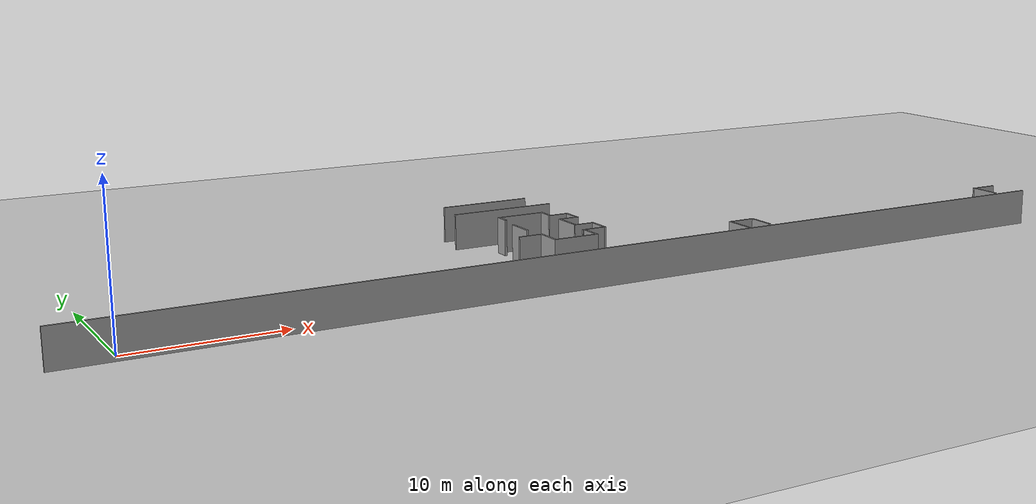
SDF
<sdf version="1.6">
 <world name="default">
  <model name="ground_plane">
   <static>1</static>
   <link name="link">
    <collision name="collision">
     <geometry><plane><normal>0 0 1</normal><size>100 100</size></plane></geometry>
     <surface><friction><ode><mu>100</mu><mu2>50</mu2></ode></friction></surface>
    </collision>
    <visual name="visual">
     <cast_shadows>0</cast_shadows>
     <geometry><plane><normal>0 0 1</normal><size>100 100</size></plane></geometry>
     <material>
      <script><uri>file://media/materials/scripts/gazebo.material</uri><name>Gazebo/Grey</name></script>
     </material>
    </visual>
   </link>
  </model>
  <model name="chengdu_office_0">
   <link name="Wall_0">
    <pose>-2e-06 -34.675 0 0 -0 0</pose>
    <visual name="Wall_0_Visual">
     <pose>0 0 1.25 0 -0 0</pose>
     <geometry><box><size>71 0.15 2.5</size></box></geometry>
     <material>
      <script><uri>file://media/materials/scripts/gazebo.material</uri><name>Gazebo/Grey</name></script>
      <ambient>1 1 1 1</ambient>
      <diffuse>0.7 0.7 0.7 1</diffuse>
      <specular>0.01 0.01 0.01 1</specular>
      <emissive>0 0 0 1</emissive>
     </material>
    </visual>
    <collision name="Wall_0_Collision">
     <pose>0 0 1.25 0 -0 0</pose>
     <geometry><box><size>71 0.15 2.5</size></box></geometry>
     <surface>
      <friction>
       <ode><mu>1</mu><mu2>1</mu2><fdir1>0 0 0</fdir1><slip1>0</slip1><slip2>0</slip2></ode>
       <torsional>
        <coefficient>1</coefficient>
        <patch_radius>0</patch_radius>
        <surface_radius>0</surface_radius>
        <use_patch_radius>1</use_patch_radius>
        <ode><slip>0</slip></ode>
       </torsional>
      </friction>
      <bounce><restitution_coefficient>0</restitution_coefficient><threshold>1e+06</threshold></bounce>
      <contact>
       <collide_without_contact>0</collide_without_contact>
       <collide_without_contact_bitmask>1</collide_without_contact_bitmask>
       <collide_bitmask>1</collide_bitmask>
       <ode>
        <soft_cfm>0</soft_cfm>
        <soft_erp>0.2</soft_erp>
        <kp>1e+13</kp>
        <kd>1</kd>
        <max_vel>0.01</max_vel>
        <min_depth>0</min_depth>
       </ode>
       <bullet>
        <split_impulse>1</split_impulse>
        <split_impulse_penetration_threshold>-0.01</split_impulse_penetration_threshold>
        <soft_cfm>0</soft_cfm>
        <soft_erp>0.2</soft_erp>
        <kp>1e+13</kp>
        <kd>1</kd>
       </bullet>
      </contact>
     </surface>
    </collision>
   </link>
   <link name="Wall_120">
    <pose>10.2646 -33.3892 0 0 -0 1.5708</pose>
    <visual name="Wall_120_Visual">
     <pose>0 0 1.25 0 -0 0</pose>
     <geometry><box><size>2.25 0.15 2.5</size></box></geometry>
     <material>
      <script><uri>file://media/materials/scripts/gazebo.material</uri><name>Gazebo/Grey</name></script>
      <ambient>1 1 1 1</ambient>
      <diffuse>0.7 0.7 0.7 1</diffuse>
      <specular>0.01 0.01 0.01 1</specular>
      <emissive>0 0 0 1</emissive>
     </material>
    </visual>
    <collision name="Wall_120_Collision">
     <pose>0 0 1.25 0 -0 0</pose>
     <geometry><box><size>2.25 0.15 2.5</size></box></geometry>
     <surface>
      <friction>
       <ode><mu>1</mu><mu2>1</mu2><fdir1>0 0 0</fdir1><slip1>0</slip1><slip2>0</slip2></ode>
       <torsional>
        <coefficient>1</coefficient>
        <patch_radius>0</patch_radius>
        <surface_radius>0</surface_radius>
        <use_patch_radius>1</use_patch_radius>
        <ode><slip>0</slip></ode>
       </torsional>
      </friction>
      <bounce><restitution_coefficient>0</restitution_coefficient><threshold>1e+06</threshold></bounce>
      <contact>
       <collide_without_contact>0</collide_without_contact>
       <collide_without_contact_bitmask>1</collide_without_contact_bitmask>
       <collide_bitmask>1</collide_bitmask>
       <ode>
        <soft_cfm>0</soft_cfm>
        <soft_erp>0.2</soft_erp>
        <kp>1e+13</kp>
        <kd>1</kd>
        <max_vel>0.01</max_vel>
        <min_depth>0</min_depth>
       </ode>
       <bullet>
        <split_impulse>1</split_impulse>
        <split_impulse_penetration_threshold>-0.01</split_impulse_penetration_threshold>
        <soft_cfm>0</soft_cfm>
        <soft_erp>0.2</soft_erp>
        <kp>1e+13</kp>
        <kd>1</kd>
       </bullet>
      </contact>
     </surface>
    </collision>
   </link>
   <link name="Wall_121">
    <pose>11.1896 -32.3392 0 0 -0 0</pose>
    <visual name="Wall_121_Visual">
     <pose>0 0 1.25 0 -0 0</pose>
     <geometry><box><size>2 0.15 2.5</size></box></geometry>
     <material>
      <script><uri>file://media/materials/scripts/gazebo.material</uri><name>Gazebo/Grey</name></script>
      <ambient>1 1 1 1</ambient>
      <diffuse>0.7 0.7 0.7 1</diffuse>
      <specular>0.01 0.01 0.01 1</specular>
      <emissive>0 0 0 1</emissive>
     </material>
    </visual>
    <collision name="Wall_121_Collision">
     <pose>0 0 1.25 0 -0 0</pose>
     <geometry><box><size>2 0.15 2.5</size></box></geometry>
     <surface>
      <friction>
       <ode><mu>1</mu><mu2>1</mu2><fdir1>0 0 0</fdir1><slip1>0</slip1><slip2>0</slip2></ode>
       <torsional>
        <coefficient>1</coefficient>
        <patch_radius>0</patch_radius>
        <surface_radius>0</surface_radius>
        <use_patch_radius>1</use_patch_radius>
        <ode><slip>0</slip></ode>
       </torsional>
      </friction>
      <bounce><restitution_coefficient>0</restitution_coefficient><threshold>1e+06</threshold></bounce>
      <contact>
       <collide_without_contact>0</collide_without_contact>
       <collide_without_contact_bitmask>1</collide_without_contact_bitmask>
       <collide_bitmask>1</collide_bitmask>
       <ode>
        <soft_cfm>0</soft_cfm>
        <soft_erp>0.2</soft_erp>
        <kp>1e+13</kp>
        <kd>1</kd>
        <max_vel>0.01</max_vel>
        <min_depth>0</min_depth>
       </ode>
       <bullet>
        <split_impulse>1</split_impulse>
        <split_impulse_penetration_threshold>-0.01</split_impulse_penetration_threshold>
        <soft_cfm>0</soft_cfm>
        <soft_erp>0.2</soft_erp>
        <kp>1e+13</kp>
        <kd>1</kd>
       </bullet>
      </contact>
     </surface>
    </collision>
   </link>
   <link name="Wall_122">
    <pose>12.1146 -33.2642 0 0 0 -1.5708</pose>
    <visual name="Wall_122_Visual">
     <pose>0 0 1.25 0 -0 0</pose>
     <geometry><box><size>2 0.15 2.5</size></box></geometry>
     <material>
      <script><uri>file://media/materials/scripts/gazebo.material</uri><name>Gazebo/Grey</name></script>
      <ambient>1 1 1 1</ambient>
      <diffuse>0.7 0.7 0.7 1</diffuse>
      <specular>0.01 0.01 0.01 1</specular>
      <emissive>0 0 0 1</emissive>
     </material>
    </visual>
    <collision name="Wall_122_Collision">
     <pose>0 0 1.25 0 -0 0</pose>
     <geometry><box><size>2 0.15 2.5</size></box></geometry>
     <surface>
      <friction>
       <ode><mu>1</mu><mu2>1</mu2><fdir1>0 0 0</fdir1><slip1>0</slip1><slip2>0</slip2></ode>
       <torsional>
        <coefficient>1</coefficient>
        <patch_radius>0</patch_radius>
        <surface_radius>0</surface_radius>
        <use_patch_radius>1</use_patch_radius>
        <ode><slip>0</slip></ode>
       </torsional>
      </friction>
      <bounce><restitution_coefficient>0</restitution_coefficient><threshold>1e+06</threshold></bounce>
      <contact>
       <collide_without_contact>0</collide_without_contact>
       <collide_without_contact_bitmask>1</collide_without_contact_bitmask>
       <collide_bitmask>1</collide_bitmask>
       <ode>
        <soft_cfm>0</soft_cfm>
        <soft_erp>0.2</soft_erp>
        <kp>1e+13</kp>
        <kd>1</kd>
        <max_vel>0.01</max_vel>
        <min_depth>0</min_depth>
       </ode>
       <bullet>
        <split_impulse>1</split_impulse>
        <split_impulse_penetration_threshold>-0.01</split_impulse_penetration_threshold>
        <soft_cfm>0</soft_cfm>
        <soft_erp>0.2</soft_erp>
        <kp>1e+13</kp>
        <kd>1</kd>
       </bullet>
      </contact>
     </surface>
    </collision>
   </link>
   <link name="Wall_124">
    <pose>33.0646 -33.2292 0 0 -0 1.5708</pose>
    <visual name="Wall_124_Visual">
     <pose>0 0 1.25 0 -0 0</pose>
     <geometry><box><size>2.25 0.15 2.5</size></box></geometry>
     <material>
      <script><uri>file://media/materials/scripts/gazebo.material</uri><name>Gazebo/Grey</name></script>
      <ambient>1 1 1 1</ambient>
      <diffuse>0.7 0.7 0.7 1</diffuse>
      <specular>0.01 0.01 0.01 1</specular>
      <emissive>0 0 0 1</emissive>
     </material>
    </visual>
    <collision name="Wall_124_Collision">
     <pose>0 0 1.25 0 -0 0</pose>
     <geometry><box><size>2.25 0.15 2.5</size></box></geometry>
     <surface>
      <friction>
       <ode><mu>1</mu><mu2>1</mu2><fdir1>0 0 0</fdir1><slip1>0</slip1><slip2>0</slip2></ode>
       <torsional>
        <coefficient>1</coefficient>
        <patch_radius>0</patch_radius>
        <surface_radius>0</surface_radius>
        <use_patch_radius>1</use_patch_radius>
        <ode><slip>0</slip></ode>
       </torsional>
      </friction>
      <bounce><restitution_coefficient>0</restitution_coefficient><threshold>1e+06</threshold></bounce>
      <contact>
       <collide_without_contact>0</collide_without_contact>
       <collide_without_contact_bitmask>1</collide_without_contact_bitmask>
       <collide_bitmask>1</collide_bitmask>
       <ode>
        <soft_cfm>0</soft_cfm>
        <soft_erp>0.2</soft_erp>
        <kp>1e+13</kp>
        <kd>1</kd>
        <max_vel>0.01</max_vel>
        <min_depth>0</min_depth>
       </ode>
       <bullet>
        <split_impulse>1</split_impulse>
        <split_impulse_penetration_threshold>-0.01</split_impulse_penetration_threshold>
        <soft_cfm>0</soft_cfm>
        <soft_erp>0.2</soft_erp>
        <kp>1e+13</kp>
        <kd>1</kd>
       </bullet>
      </contact>
     </surface>
    </collision>
   </link>
   <link name="Wall_125">
    <pose>33.9896 -32.1792 0 0 -0 0</pose>
    <visual name="Wall_125_Visual">
     <pose>0 0 1.25 0 -0 0</pose>
     <geometry><box><size>2 0.15 2.5</size></box></geometry>
     <material>
      <script><uri>file://media/materials/scripts/gazebo.material</uri><name>Gazebo/Grey</name></script>
      <ambient>1 1 1 1</ambient>
      <diffuse>0.7 0.7 0.7 1</diffuse>
      <specular>0.01 0.01 0.01 1</specular>
      <emissive>0 0 0 1</emissive>
     </material>
    </visual>
    <collision name="Wall_125_Collision">
     <pose>0 0 1.25 0 -0 0</pose>
     <geometry><box><size>2 0.15 2.5</size></box></geometry>
     <surface>
      <friction>
       <ode><mu>1</mu><mu2>1</mu2><fdir1>0 0 0</fdir1><slip1>0</slip1><slip2>0</slip2></ode>
       <torsional>
        <coefficient>1</coefficient>
        <patch_radius>0</patch_radius>
        <surface_radius>0</surface_radius>
        <use_patch_radius>1</use_patch_radius>
        <ode><slip>0</slip></ode>
       </torsional>
      </friction>
      <bounce><restitution_coefficient>0</restitution_coefficient><threshold>1e+06</threshold></bounce>
      <contact>
       <collide_without_contact>0</collide_without_contact>
       <collide_without_contact_bitmask>1</collide_without_contact_bitmask>
       <collide_bitmask>1</collide_bitmask>
       <ode>
        <soft_cfm>0</soft_cfm>
        <soft_erp>0.2</soft_erp>
        <kp>1e+13</kp>
        <kd>1</kd>
        <max_vel>0.01</max_vel>
        <min_depth>0</min_depth>
       </ode>
       <bullet>
        <split_impulse>1</split_impulse>
        <split_impulse_penetration_threshold>-0.01</split_impulse_penetration_threshold>
        <soft_cfm>0</soft_cfm>
        <soft_erp>0.2</soft_erp>
        <kp>1e+13</kp>
        <kd>1</kd>
       </bullet>
      </contact>
     </surface>
    </collision>
   </link>
   <link name="Wall_129">
    <pose>-1.17216 -18.065 0 0 -0 3.14159</pose>
    <visual name="Wall_129_Visual">
     <pose>0 0 1.25 0 -0 0</pose>
     <geometry><box><size>6.5 0.15 2.5</size></box></geometry>
     <material>
      <script><uri>file://media/materials/scripts/gazebo.material</uri><name>Gazebo/Grey</name></script>
      <ambient>1 1 1 1</ambient>
      <diffuse>0.7 0.7 0.7 1</diffuse>
      <specular>0.01 0.01 0.01 1</specular>
      <emissive>0 0 0 1</emissive>
     </material>
    </visual>
    <collision name="Wall_129_Collision">
     <pose>0 0 1.25 0 -0 0</pose>
     <geometry><box><size>6.5 0.15 2.5</size></box></geometry>
     <surface>
      <friction>
       <ode><mu>1</mu><mu2>1</mu2><fdir1>0 0 0</fdir1><slip1>0</slip1><slip2>0</slip2></ode>
       <torsional>
        <coefficient>1</coefficient>
        <patch_radius>0</patch_radius>
        <surface_radius>0</surface_radius>
        <use_patch_radius>1</use_patch_radius>
        <ode><slip>0</slip></ode>
       </torsional>
      </friction>
      <bounce><restitution_coefficient>0</restitution_coefficient><threshold>1e+06</threshold></bounce>
      <contact>
       <collide_without_contact>0</collide_without_contact>
       <collide_without_contact_bitmask>1</collide_without_contact_bitmask>
       <collide_bitmask>1</collide_bitmask>
       <ode>
        <soft_cfm>0</soft_cfm>
        <soft_erp>0.2</soft_erp>
        <kp>1e+13</kp>
        <kd>1</kd>
        <max_vel>0.01</max_vel>
        <min_depth>0</min_depth>
       </ode>
       <bullet>
        <split_impulse>1</split_impulse>
        <split_impulse_penetration_threshold>-0.01</split_impulse_penetration_threshold>
        <soft_cfm>0</soft_cfm>
        <soft_erp>0.2</soft_erp>
        <kp>1e+13</kp>
        <kd>1</kd>
       </bullet>
      </contact>
     </surface>
    </collision>
   </link>
   <link name="Wall_134">
    <pose>-1.07216 -20.665 0 0 -0 0</pose>
    <visual name="Wall_134_Visual">
     <pose>0 0 1.25 0 -0 0</pose>
     <geometry><box><size>7.5 0.15 2.5</size></box></geometry>
     <material>
      <script><uri>file://media/materials/scripts/gazebo.material</uri><name>Gazebo/Grey</name></script>
      <ambient>1 1 1 1</ambient>
      <diffuse>0.7 0.7 0.7 1</diffuse>
      <specular>0.01 0.01 0.01 1</specular>
      <emissive>0 0 0 1</emissive>
     </material>
    </visual>
    <collision name="Wall_134_Collision">
     <pose>0 0 1.25 0 -0 0</pose>
     <geometry><box><size>7.5 0.15 2.5</size></box></geometry>
     <surface>
      <friction>
       <ode><mu>1</mu><mu2>1</mu2><fdir1>0 0 0</fdir1><slip1>0</slip1><slip2>0</slip2></ode>
       <torsional>
        <coefficient>1</coefficient>
        <patch_radius>0</patch_radius>
        <surface_radius>0</surface_radius>
        <use_patch_radius>1</use_patch_radius>
        <ode><slip>0</slip></ode>
       </torsional>
      </friction>
      <bounce><restitution_coefficient>0</restitution_coefficient><threshold>1e+06</threshold></bounce>
      <contact>
       <collide_without_contact>0</collide_without_contact>
       <collide_without_contact_bitmask>1</collide_without_contact_bitmask>
       <collide_bitmask>1</collide_bitmask>
       <ode>
        <soft_cfm>0</soft_cfm>
        <soft_erp>0.2</soft_erp>
        <kp>1e+13</kp>
        <kd>1</kd>
        <max_vel>0.01</max_vel>
        <min_depth>0</min_depth>
       </ode>
       <bullet>
        <split_impulse>1</split_impulse>
        <split_impulse_penetration_threshold>-0.01</split_impulse_penetration_threshold>
        <soft_cfm>0</soft_cfm>
        <soft_erp>0.2</soft_erp>
        <kp>1e+13</kp>
        <kd>1</kd>
       </bullet>
      </contact>
     </surface>
    </collision>
   </link>
   <link name="Wall_147">
    <pose>-2.63965 -23.5276 0 0 0 -1.5708</pose>
    <inertial>
     <inertia><ixx>nan</ixx><ixy>0</ixy><ixz>0</ixz><iyy>nan</iyy><iyz>0</iyz><izz>nan</izz></inertia>
     <mass>0</mass>
    </inertial>
    <visual name="Wall_147_Visual">
     <pose>0 0 1.25 0 -0 0</pose>
     <geometry><box><size>1.05378 0.15 2.5</size></box></geometry>
     <material>
      <script><uri>file://media/materials/scripts/gazebo.material</uri><name>Gazebo/Grey</name></script>
      <ambient>1 1 1 1</ambient>
      <diffuse>0.7 0.7 0.7 1</diffuse>
      <specular>0.01 0.01 0.01 1</specular>
      <emissive>0 0 0 1</emissive>
     </material>
    </visual>
    <collision name="Wall_147_Collision">
     <pose>0 0 1.25 0 -0 0</pose>
     <geometry><box><size>1.05378 0.15 2.5</size></box></geometry>
     <surface>
      <friction>
       <ode><mu>1</mu><mu2>1</mu2><fdir1>0 0 0</fdir1><slip1>0</slip1><slip2>0</slip2></ode>
       <torsional>
        <coefficient>1</coefficient>
        <patch_radius>0</patch_radius>
        <surface_radius>0</surface_radius>
        <use_patch_radius>1</use_patch_radius>
        <ode><slip>0</slip></ode>
       </torsional>
      </friction>
      <bounce><restitution_coefficient>0</restitution_coefficient><threshold>1e+06</threshold></bounce>
      <contact>
       <collide_without_contact>0</collide_without_contact>
       <collide_without_contact_bitmask>1</collide_without_contact_bitmask>
       <collide_bitmask>1</collide_bitmask>
       <ode>
        <soft_cfm>0</soft_cfm>
        <soft_erp>0.2</soft_erp>
        <kp>1e+13</kp>
        <kd>1</kd>
        <max_vel>0.01</max_vel>
        <min_depth>0</min_depth>
       </ode>
       <bullet>
        <split_impulse>1</split_impulse>
        <split_impulse_penetration_threshold>-0.01</split_impulse_penetration_threshold>
        <soft_cfm>0</soft_cfm>
        <soft_erp>0.2</soft_erp>
        <kp>1e+13</kp>
        <kd>1</kd>
       </bullet>
      </contact>
     </surface>
    </collision>
   </link>
   <link name="Wall_151">
    <pose>-2.88965 -26.6029 0 0 0 -1.5708</pose>
    <visual name="Wall_151_Visual">
     <pose>0 0 1.25 0 -0 0</pose>
     <geometry><box><size>2 0.15 2.5</size></box></geometry>
     <material>
      <script><uri>file://media/materials/scripts/gazebo.material</uri><name>Gazebo/Grey</name></script>
      <ambient>1 1 1 1</ambient>
      <diffuse>0.7 0.7 0.7 1</diffuse>
      <specular>0.01 0.01 0.01 1</specular>
      <emissive>0 0 0 1</emissive>
     </material>
    </visual>
    <collision name="Wall_151_Collision">
     <pose>0 0 1.25 0 -0 0</pose>
     <geometry><box><size>2 0.15 2.5</size></box></geometry>
     <surface>
      <friction>
       <ode><mu>1</mu><mu2>1</mu2><fdir1>0 0 0</fdir1><slip1>0</slip1><slip2>0</slip2></ode>
       <torsional>
        <coefficient>1</coefficient>
        <patch_radius>0</patch_radius>
        <surface_radius>0</surface_radius>
        <use_patch_radius>1</use_patch_radius>
        <ode><slip>0</slip></ode>
       </torsional>
      </friction>
      <bounce><restitution_coefficient>0</restitution_coefficient><threshold>1e+06</threshold></bounce>
      <contact>
       <collide_without_contact>0</collide_without_contact>
       <collide_without_contact_bitmask>1</collide_without_contact_bitmask>
       <collide_bitmask>1</collide_bitmask>
       <ode>
        <soft_cfm>0</soft_cfm>
        <soft_erp>0.2</soft_erp>
        <kp>1e+13</kp>
        <kd>1</kd>
        <max_vel>0.01</max_vel>
        <min_depth>0</min_depth>
       </ode>
       <bullet>
        <split_impulse>1</split_impulse>
        <split_impulse_penetration_threshold>-0.01</split_impulse_penetration_threshold>
        <soft_cfm>0</soft_cfm>
        <soft_erp>0.2</soft_erp>
        <kp>1e+13</kp>
        <kd>1</kd>
       </bullet>
      </contact>
     </surface>
    </collision>
   </link>
   <link name="Wall_155">
    <pose>-3.43965 -29.0982 0 0 -0 0</pose>
    <visual name="Wall_155_Visual">
     <pose>0 0 1.25 0 -0 0</pose>
     <geometry><box><size>1.75 0.15 2.5</size></box></geometry>
     <material>
      <script><uri>file://media/materials/scripts/gazebo.material</uri><name>Gazebo/Grey</name></script>
      <ambient>1 1 1 1</ambient>
      <diffuse>0.7 0.7 0.7 1</diffuse>
      <specular>0.01 0.01 0.01 1</specular>
      <emissive>0 0 0 1</emissive>
     </material>
    </visual>
    <collision name="Wall_155_Collision">
     <pose>0 0 1.25 0 -0 0</pose>
     <geometry><box><size>1.75 0.15 2.5</size></box></geometry>
     <surface>
      <friction>
       <ode><mu>1</mu><mu2>1</mu2><fdir1>0 0 0</fdir1><slip1>0</slip1><slip2>0</slip2></ode>
       <torsional>
        <coefficient>1</coefficient>
        <patch_radius>0</patch_radius>
        <surface_radius>0</surface_radius>
        <use_patch_radius>1</use_patch_radius>
        <ode><slip>0</slip></ode>
       </torsional>
      </friction>
      <bounce><restitution_coefficient>0</restitution_coefficient><threshold>1e+06</threshold></bounce>
      <contact>
       <collide_without_contact>0</collide_without_contact>
       <collide_without_contact_bitmask>1</collide_without_contact_bitmask>
       <collide_bitmask>1</collide_bitmask>
       <ode>
        <soft_cfm>0</soft_cfm>
        <soft_erp>0.2</soft_erp>
        <kp>1e+13</kp>
        <kd>1</kd>
        <max_vel>0.01</max_vel>
        <min_depth>0</min_depth>
       </ode>
       <bullet>
        <split_impulse>1</split_impulse>
        <split_impulse_penetration_threshold>-0.01</split_impulse_penetration_threshold>
        <soft_cfm>0</soft_cfm>
        <soft_erp>0.2</soft_erp>
        <kp>1e+13</kp>
        <kd>1</kd>
       </bullet>
      </contact>
     </surface>
    </collision>
   </link>
   <link name="Wall_158">
    <pose>-2.63965 -30.0135 0 0 0 -1.5708</pose>
    <visual name="Wall_158_Visual">
     <pose>0 0 1.25 0 -0 0</pose>
     <geometry><box><size>2 0.15 2.5</size></box></geometry>
     <material>
      <script><uri>file://media/materials/scripts/gazebo.material</uri><name>Gazebo/Grey</name></script>
      <ambient>1 1 1 1</ambient>
      <diffuse>0.7 0.7 0.7 1</diffuse>
      <specular>0.01 0.01 0.01 1</specular>
      <emissive>0 0 0 1</emissive>
     </material>
    </visual>
    <collision name="Wall_158_Collision">
     <pose>0 0 1.25 0 -0 0</pose>
     <geometry><box><size>2 0.15 2.5</size></box></geometry>
     <surface>
      <friction>
       <ode><mu>1</mu><mu2>1</mu2><fdir1>0 0 0</fdir1><slip1>0</slip1><slip2>0</slip2></ode>
       <torsional>
        <coefficient>1</coefficient>
        <patch_radius>0</patch_radius>
        <surface_radius>0</surface_radius>
        <use_patch_radius>1</use_patch_radius>
        <ode><slip>0</slip></ode>
       </torsional>
      </friction>
      <bounce><restitution_coefficient>0</restitution_coefficient><threshold>1e+06</threshold></bounce>
      <contact>
       <collide_without_contact>0</collide_without_contact>
       <collide_without_contact_bitmask>1</collide_without_contact_bitmask>
       <collide_bitmask>1</collide_bitmask>
       <ode>
        <soft_cfm>0</soft_cfm>
        <soft_erp>0.2</soft_erp>
        <kp>1e+13</kp>
        <kd>1</kd>
        <max_vel>0.01</max_vel>
        <min_depth>0</min_depth>
       </ode>
       <bullet>
        <split_impulse>1</split_impulse>
        <split_impulse_penetration_threshold>-0.01</split_impulse_penetration_threshold>
        <soft_cfm>0</soft_cfm>
        <soft_erp>0.2</soft_erp>
        <kp>1e+13</kp>
        <kd>1</kd>
       </bullet>
      </contact>
     </surface>
    </collision>
   </link>
   <link name="Wall_159">
    <pose>-1.08965 -30.9396 0 0 -0 0</pose>
    <visual name="Wall_159_Visual">
     <pose>0 0 1.25 0 -0 0</pose>
     <geometry><box><size>3.25 0.15 2.5</size></box></geometry>
     <material>
      <script><uri>file://media/materials/scripts/gazebo.material</uri><name>Gazebo/Grey</name></script>
      <ambient>1 1 1 1</ambient>
      <diffuse>0.7 0.7 0.7 1</diffuse>
      <specular>0.01 0.01 0.01 1</specular>
      <emissive>0 0 0 1</emissive>
     </material>
    </visual>
    <collision name="Wall_159_Collision">
     <pose>0 0 1.25 0 -0 0</pose>
     <geometry><box><size>3.25 0.15 2.5</size></box></geometry>
     <surface>
      <friction>
       <ode><mu>1</mu><mu2>1</mu2><fdir1>0 0 0</fdir1><slip1>0</slip1><slip2>0</slip2></ode>
       <torsional>
        <coefficient>1</coefficient>
        <patch_radius>0</patch_radius>
        <surface_radius>0</surface_radius>
        <use_patch_radius>1</use_patch_radius>
        <ode><slip>0</slip></ode>
       </torsional>
      </friction>
      <bounce><restitution_coefficient>0</restitution_coefficient><threshold>1e+06</threshold></bounce>
      <contact>
       <collide_without_contact>0</collide_without_contact>
       <collide_without_contact_bitmask>1</collide_without_contact_bitmask>
       <collide_bitmask>1</collide_bitmask>
       <ode>
        <soft_cfm>0</soft_cfm>
        <soft_erp>0.2</soft_erp>
        <kp>1e+13</kp>
        <kd>1</kd>
        <max_vel>0.01</max_vel>
        <min_depth>0</min_depth>
       </ode>
       <bullet>
        <split_impulse>1</split_impulse>
        <split_impulse_penetration_threshold>-0.01</split_impulse_penetration_threshold>
        <soft_cfm>0</soft_cfm>
        <soft_erp>0.2</soft_erp>
        <kp>1e+13</kp>
        <kd>1</kd>
       </bullet>
      </contact>
     </surface>
    </collision>
   </link>
   <link name="Wall_160">
    <pose>0.460352 -30.1341 0 0 -0 1.5708</pose>
    <visual name="Wall_160_Visual">
     <pose>0 0 1.25 0 -0 0</pose>
     <geometry><box><size>1.75 0.15 2.5</size></box></geometry>
     <material>
      <script><uri>file://media/materials/scripts/gazebo.material</uri><name>Gazebo/Grey</name></script>
      <ambient>1 1 1 1</ambient>
      <diffuse>0.7 0.7 0.7 1</diffuse>
      <specular>0.01 0.01 0.01 1</specular>
      <emissive>0 0 0 1</emissive>
     </material>
    </visual>
    <collision name="Wall_160_Collision">
     <pose>0 0 1.25 0 -0 0</pose>
     <geometry><box><size>1.75 0.15 2.5</size></box></geometry>
     <surface>
      <friction>
       <ode><mu>1</mu><mu2>1</mu2><fdir1>0 0 0</fdir1><slip1>0</slip1><slip2>0</slip2></ode>
       <torsional>
        <coefficient>1</coefficient>
        <patch_radius>0</patch_radius>
        <surface_radius>0</surface_radius>
        <use_patch_radius>1</use_patch_radius>
        <ode><slip>0</slip></ode>
       </torsional>
      </friction>
      <bounce><restitution_coefficient>0</restitution_coefficient><threshold>1e+06</threshold></bounce>
      <contact>
       <collide_without_contact>0</collide_without_contact>
       <collide_without_contact_bitmask>1</collide_without_contact_bitmask>
       <collide_bitmask>1</collide_bitmask>
       <ode>
        <soft_cfm>0</soft_cfm>
        <soft_erp>0.2</soft_erp>
        <kp>1e+13</kp>
        <kd>1</kd>
        <max_vel>0.01</max_vel>
        <min_depth>0</min_depth>
       </ode>
       <bullet>
        <split_impulse>1</split_impulse>
        <split_impulse_penetration_threshold>-0.01</split_impulse_penetration_threshold>
        <soft_cfm>0</soft_cfm>
        <soft_erp>0.2</soft_erp>
        <kp>1e+13</kp>
        <kd>1</kd>
       </bullet>
      </contact>
     </surface>
    </collision>
   </link>
   <link name="Wall_161">
    <pose>1.23474 -29.3457 0 0 -0 0</pose>
    <visual name="Wall_161_Visual">
     <pose>0 0 1.25 0 -0 0</pose>
     <geometry><box><size>1.75 0.15 2.5</size></box></geometry>
     <material>
      <script><uri>file://media/materials/scripts/gazebo.material</uri><name>Gazebo/Grey</name></script>
      <ambient>1 1 1 1</ambient>
      <diffuse>0.7 0.7 0.7 1</diffuse>
      <specular>0.01 0.01 0.01 1</specular>
      <emissive>0 0 0 1</emissive>
     </material>
    </visual>
    <collision name="Wall_161_Collision">
     <pose>0 0 1.25 0 -0 0</pose>
     <geometry><box><size>1.75 0.15 2.5</size></box></geometry>
     <surface>
      <friction>
       <ode><mu>1</mu><mu2>1</mu2><fdir1>0 0 0</fdir1><slip1>0</slip1><slip2>0</slip2></ode>
       <torsional>
        <coefficient>1</coefficient>
        <patch_radius>0</patch_radius>
        <surface_radius>0</surface_radius>
        <use_patch_radius>1</use_patch_radius>
        <ode><slip>0</slip></ode>
       </torsional>
      </friction>
      <bounce><restitution_coefficient>0</restitution_coefficient><threshold>1e+06</threshold></bounce>
      <contact>
       <collide_without_contact>0</collide_without_contact>
       <collide_without_contact_bitmask>1</collide_without_contact_bitmask>
       <collide_bitmask>1</collide_bitmask>
       <ode>
        <soft_cfm>0</soft_cfm>
        <soft_erp>0.2</soft_erp>
        <kp>1e+13</kp>
        <kd>1</kd>
        <max_vel>0.01</max_vel>
        <min_depth>0</min_depth>
       </ode>
       <bullet>
        <split_impulse>1</split_impulse>
        <split_impulse_penetration_threshold>-0.01</split_impulse_penetration_threshold>
        <soft_cfm>0</soft_cfm>
        <soft_erp>0.2</soft_erp>
        <kp>1e+13</kp>
        <kd>1</kd>
       </bullet>
      </contact>
     </surface>
    </collision>
   </link>
   <link name="Wall_162">
    <pose>2.06035 -28.5507 0 0 -0 1.5708</pose>
    <visual name="Wall_162_Visual">
     <pose>0 0 1.25 0 -0 0</pose>
     <geometry><box><size>1.75 0.15 2.5</size></box></geometry>
     <material>
      <script><uri>file://media/materials/scripts/gazebo.material</uri><name>Gazebo/Grey</name></script>
      <ambient>1 1 1 1</ambient>
      <diffuse>0.7 0.7 0.7 1</diffuse>
      <specular>0.01 0.01 0.01 1</specular>
      <emissive>0 0 0 1</emissive>
     </material>
    </visual>
    <collision name="Wall_162_Collision">
     <pose>0 0 1.25 0 -0 0</pose>
     <geometry><box><size>1.75 0.15 2.5</size></box></geometry>
     <surface>
      <friction>
       <ode><mu>1</mu><mu2>1</mu2><fdir1>0 0 0</fdir1><slip1>0</slip1><slip2>0</slip2></ode>
       <torsional>
        <coefficient>1</coefficient>
        <patch_radius>0</patch_radius>
        <surface_radius>0</surface_radius>
        <use_patch_radius>1</use_patch_radius>
        <ode><slip>0</slip></ode>
       </torsional>
      </friction>
      <bounce><restitution_coefficient>0</restitution_coefficient><threshold>1e+06</threshold></bounce>
      <contact>
       <collide_without_contact>0</collide_without_contact>
       <collide_without_contact_bitmask>1</collide_without_contact_bitmask>
       <collide_bitmask>1</collide_bitmask>
       <ode>
        <soft_cfm>0</soft_cfm>
        <soft_erp>0.2</soft_erp>
        <kp>1e+13</kp>
        <kd>1</kd>
        <max_vel>0.01</max_vel>
        <min_depth>0</min_depth>
       </ode>
       <bullet>
        <split_impulse>1</split_impulse>
        <split_impulse_penetration_threshold>-0.01</split_impulse_penetration_threshold>
        <soft_cfm>0</soft_cfm>
        <soft_erp>0.2</soft_erp>
        <kp>1e+13</kp>
        <kd>1</kd>
       </bullet>
      </contact>
     </surface>
    </collision>
   </link>
   <link name="Wall_163">
    <pose>1.38535 -27.7701 0 0 -0 3.14159</pose>
    <visual name="Wall_163_Visual">
     <pose>0 0 1.25 0 -0 0</pose>
     <geometry><box><size>1.5 0.15 2.5</size></box></geometry>
     <material>
      <script><uri>file://media/materials/scripts/gazebo.material</uri><name>Gazebo/Grey</name></script>
      <ambient>1 1 1 1</ambient>
      <diffuse>0.7 0.7 0.7 1</diffuse>
      <specular>0.01 0.01 0.01 1</specular>
      <emissive>0 0 0 1</emissive>
     </material>
    </visual>
    <collision name="Wall_163_Collision">
     <pose>0 0 1.25 0 -0 0</pose>
     <geometry><box><size>1.5 0.15 2.5</size></box></geometry>
     <surface>
      <friction>
       <ode><mu>1</mu><mu2>1</mu2><fdir1>0 0 0</fdir1><slip1>0</slip1><slip2>0</slip2></ode>
       <torsional>
        <coefficient>1</coefficient>
        <patch_radius>0</patch_radius>
        <surface_radius>0</surface_radius>
        <use_patch_radius>1</use_patch_radius>
        <ode><slip>0</slip></ode>
       </torsional>
      </friction>
      <bounce><restitution_coefficient>0</restitution_coefficient><threshold>1e+06</threshold></bounce>
      <contact>
       <collide_without_contact>0</collide_without_contact>
       <collide_without_contact_bitmask>1</collide_without_contact_bitmask>
       <collide_bitmask>1</collide_bitmask>
       <ode>
        <soft_cfm>0</soft_cfm>
        <soft_erp>0.2</soft_erp>
        <kp>1e+13</kp>
        <kd>1</kd>
        <max_vel>0.01</max_vel>
        <min_depth>0</min_depth>
       </ode>
       <bullet>
        <split_impulse>1</split_impulse>
        <split_impulse_penetration_threshold>-0.01</split_impulse_penetration_threshold>
        <soft_cfm>0</soft_cfm>
        <soft_erp>0.2</soft_erp>
        <kp>1e+13</kp>
        <kd>1</kd>
       </bullet>
      </contact>
     </surface>
    </collision>
   </link>
   <link name="Wall_164">
    <pose>0.710356 -26.7182 0 0 -0 1.5708</pose>
    <visual name="Wall_164_Visual">
     <pose>0 0 1.25 0 -0 0</pose>
     <geometry><box><size>2.25 0.15 2.5</size></box></geometry>
     <material>
      <script><uri>file://media/materials/scripts/gazebo.material</uri><name>Gazebo/Grey</name></script>
      <ambient>1 1 1 1</ambient>
      <diffuse>0.7 0.7 0.7 1</diffuse>
      <specular>0.01 0.01 0.01 1</specular>
      <emissive>0 0 0 1</emissive>
     </material>
    </visual>
    <collision name="Wall_164_Collision">
     <pose>0 0 1.25 0 -0 0</pose>
     <geometry><box><size>2.25 0.15 2.5</size></box></geometry>
     <surface>
      <friction>
       <ode><mu>1</mu><mu2>1</mu2><fdir1>0 0 0</fdir1><slip1>0</slip1><slip2>0</slip2></ode>
       <torsional>
        <coefficient>1</coefficient>
        <patch_radius>0</patch_radius>
        <surface_radius>0</surface_radius>
        <use_patch_radius>1</use_patch_radius>
        <ode><slip>0</slip></ode>
       </torsional>
      </friction>
      <bounce><restitution_coefficient>0</restitution_coefficient><threshold>1e+06</threshold></bounce>
      <contact>
       <collide_without_contact>0</collide_without_contact>
       <collide_without_contact_bitmask>1</collide_without_contact_bitmask>
       <collide_bitmask>1</collide_bitmask>
       <ode>
        <soft_cfm>0</soft_cfm>
        <soft_erp>0.2</soft_erp>
        <kp>1e+13</kp>
        <kd>1</kd>
        <max_vel>0.01</max_vel>
        <min_depth>0</min_depth>
       </ode>
       <bullet>
        <split_impulse>1</split_impulse>
        <split_impulse_penetration_threshold>-0.01</split_impulse_penetration_threshold>
        <soft_cfm>0</soft_cfm>
        <soft_erp>0.2</soft_erp>
        <kp>1e+13</kp>
        <kd>1</kd>
       </bullet>
      </contact>
     </surface>
    </collision>
   </link>
   <link name="Wall_165">
    <pose>1.38975 -25.654 0 0 -0 0</pose>
    <visual name="Wall_165_Visual">
     <pose>0 0 1.25 0 -0 0</pose>
     <geometry><box><size>1.5 0.15 2.5</size></box></geometry>
     <material>
      <script><uri>file://media/materials/scripts/gazebo.material</uri><name>Gazebo/Grey</name></script>
      <ambient>1 1 1 1</ambient>
      <diffuse>0.7 0.7 0.7 1</diffuse>
      <specular>0.01 0.01 0.01 1</specular>
      <emissive>0 0 0 1</emissive>
     </material>
    </visual>
    <collision name="Wall_165_Collision">
     <pose>0 0 1.25 0 -0 0</pose>
     <geometry><box><size>1.5 0.15 2.5</size></box></geometry>
     <surface>
      <friction>
       <ode><mu>1</mu><mu2>1</mu2><fdir1>0 0 0</fdir1><slip1>0</slip1><slip2>0</slip2></ode>
       <torsional>
        <coefficient>1</coefficient>
        <patch_radius>0</patch_radius>
        <surface_radius>0</surface_radius>
        <use_patch_radius>1</use_patch_radius>
        <ode><slip>0</slip></ode>
       </torsional>
      </friction>
      <bounce><restitution_coefficient>0</restitution_coefficient><threshold>1e+06</threshold></bounce>
      <contact>
       <collide_without_contact>0</collide_without_contact>
       <collide_without_contact_bitmask>1</collide_without_contact_bitmask>
       <collide_bitmask>1</collide_bitmask>
       <ode>
        <soft_cfm>0</soft_cfm>
        <soft_erp>0.2</soft_erp>
        <kp>1e+13</kp>
        <kd>1</kd>
        <max_vel>0.01</max_vel>
        <min_depth>0</min_depth>
       </ode>
       <bullet>
        <split_impulse>1</split_impulse>
        <split_impulse_penetration_threshold>-0.01</split_impulse_penetration_threshold>
        <soft_cfm>0</soft_cfm>
        <soft_erp>0.2</soft_erp>
        <kp>1e+13</kp>
        <kd>1</kd>
       </bullet>
      </contact>
     </surface>
    </collision>
   </link>
   <link name="Wall_166">
    <pose>2.06035 -24.9625 0 0 -0 1.5708</pose>
    <visual name="Wall_166_Visual">
     <pose>0 0 1.25 0 -0 0</pose>
     <geometry><box><size>1.5 0.15 2.5</size></box></geometry>
     <material>
      <script><uri>file://media/materials/scripts/gazebo.material</uri><name>Gazebo/Grey</name></script>
      <ambient>1 1 1 1</ambient>
      <diffuse>0.7 0.7 0.7 1</diffuse>
      <specular>0.01 0.01 0.01 1</specular>
      <emissive>0 0 0 1</emissive>
     </material>
    </visual>
    <collision name="Wall_166_Collision">
     <pose>0 0 1.25 0 -0 0</pose>
     <geometry><box><size>1.5 0.15 2.5</size></box></geometry>
     <surface>
      <friction>
       <ode><mu>1</mu><mu2>1</mu2><fdir1>0 0 0</fdir1><slip1>0</slip1><slip2>0</slip2></ode>
       <torsional>
        <coefficient>1</coefficient>
        <patch_radius>0</patch_radius>
        <surface_radius>0</surface_radius>
        <use_patch_radius>1</use_patch_radius>
        <ode><slip>0</slip></ode>
       </torsional>
      </friction>
      <bounce><restitution_coefficient>0</restitution_coefficient><threshold>1e+06</threshold></bounce>
      <contact>
       <collide_without_contact>0</collide_without_contact>
       <collide_without_contact_bitmask>1</collide_without_contact_bitmask>
       <collide_bitmask>1</collide_bitmask>
       <ode>
        <soft_cfm>0</soft_cfm>
        <soft_erp>0.2</soft_erp>
        <kp>1e+13</kp>
        <kd>1</kd>
        <max_vel>0.01</max_vel>
        <min_depth>0</min_depth>
       </ode>
       <bullet>
        <split_impulse>1</split_impulse>
        <split_impulse_penetration_threshold>-0.01</split_impulse_penetration_threshold>
        <soft_cfm>0</soft_cfm>
        <soft_erp>0.2</soft_erp>
        <kp>1e+13</kp>
        <kd>1</kd>
       </bullet>
      </contact>
     </surface>
    </collision>
   </link>
   <link name="Wall_167">
    <pose>1.38535 -24.27 0 0 -0 3.14159</pose>
    <visual name="Wall_167_Visual">
     <pose>0 0 1.25 0 -0 0</pose>
     <geometry><box><size>1.5 0.15 2.5</size></box></geometry>
     <material>
      <script><uri>file://media/materials/scripts/gazebo.material</uri><name>Gazebo/Grey</name></script>
      <ambient>1 1 1 1</ambient>
      <diffuse>0.7 0.7 0.7 1</diffuse>
      <specular>0.01 0.01 0.01 1</specular>
      <emissive>0 0 0 1</emissive>
     </material>
    </visual>
    <collision name="Wall_167_Collision">
     <pose>0 0 1.25 0 -0 0</pose>
     <geometry><box><size>1.5 0.15 2.5</size></box></geometry>
     <surface>
      <friction>
       <ode><mu>1</mu><mu2>1</mu2><fdir1>0 0 0</fdir1><slip1>0</slip1><slip2>0</slip2></ode>
       <torsional>
        <coefficient>1</coefficient>
        <patch_radius>0</patch_radius>
        <surface_radius>0</surface_radius>
        <use_patch_radius>1</use_patch_radius>
        <ode><slip>0</slip></ode>
       </torsional>
      </friction>
      <bounce><restitution_coefficient>0</restitution_coefficient><threshold>1e+06</threshold></bounce>
      <contact>
       <collide_without_contact>0</collide_without_contact>
       <collide_without_contact_bitmask>1</collide_without_contact_bitmask>
       <collide_bitmask>1</collide_bitmask>
       <ode>
        <soft_cfm>0</soft_cfm>
        <soft_erp>0.2</soft_erp>
        <kp>1e+13</kp>
        <kd>1</kd>
        <max_vel>0.01</max_vel>
        <min_depth>0</min_depth>
       </ode>
       <bullet>
        <split_impulse>1</split_impulse>
        <split_impulse_penetration_threshold>-0.01</split_impulse_penetration_threshold>
        <soft_cfm>0</soft_cfm>
        <soft_erp>0.2</soft_erp>
        <kp>1e+13</kp>
        <kd>1</kd>
       </bullet>
      </contact>
     </surface>
    </collision>
   </link>
   <link name="Wall_168">
    <pose>0.710356 -23.6479 0 0 -0 1.5708</pose>
    <inertial>
     <inertia><ixx>nan</ixx><ixy>0</ixy><ixz>0</ixz><iyy>nan</iyy><iyz>0</iyz><izz>nan</izz></inertia>
     <mass>0</mass>
    </inertial>
    <visual name="Wall_168_Visual">
     <pose>0 0 1.25 0 -0 0</pose>
     <geometry><box><size>1.30716 0.15 2.5</size></box></geometry>
     <material>
      <script><uri>file://media/materials/scripts/gazebo.material</uri><name>Gazebo/Grey</name></script>
      <ambient>1 1 1 1</ambient>
      <diffuse>0.7 0.7 0.7 1</diffuse>
      <specular>0.01 0.01 0.01 1</specular>
      <emissive>0 0 0 1</emissive>
     </material>
    </visual>
    <collision name="Wall_168_Collision">
     <pose>0 0 1.25 0 -0 0</pose>
     <geometry><box><size>1.30716 0.15 2.5</size></box></geometry>
     <surface>
      <friction>
       <ode><mu>1</mu><mu2>1</mu2><fdir1>0 0 0</fdir1><slip1>0</slip1><slip2>0</slip2></ode>
       <torsional>
        <coefficient>1</coefficient>
        <patch_radius>0</patch_radius>
        <surface_radius>0</surface_radius>
        <use_patch_radius>1</use_patch_radius>
        <ode><slip>0</slip></ode>
       </torsional>
      </friction>
      <bounce><restitution_coefficient>0</restitution_coefficient><threshold>1e+06</threshold></bounce>
      <contact>
       <collide_without_contact>0</collide_without_contact>
       <collide_without_contact_bitmask>1</collide_without_contact_bitmask>
       <collide_bitmask>1</collide_bitmask>
       <ode>
        <soft_cfm>0</soft_cfm>
        <soft_erp>0.2</soft_erp>
        <kp>1e+13</kp>
        <kd>1</kd>
        <max_vel>0.01</max_vel>
        <min_depth>0</min_depth>
       </ode>
       <bullet>
        <split_impulse>1</split_impulse>
        <split_impulse_penetration_threshold>-0.01</split_impulse_penetration_threshold>
        <soft_cfm>0</soft_cfm>
        <soft_erp>0.2</soft_erp>
        <kp>1e+13</kp>
        <kd>1</kd>
       </bullet>
      </contact>
     </surface>
    </collision>
   </link>
   <link name="Wall_169">
    <pose>-0.964647 -23.0761 0 0 -0 3.14159</pose>
    <visual name="Wall_169_Visual">
     <pose>0 0 1.25 0 -0 0</pose>
     <geometry><box><size>3.5 0.15 2.5</size></box></geometry>
     <material>
      <script><uri>file://media/materials/scripts/gazebo.material</uri><name>Gazebo/Grey</name></script>
      <ambient>1 1 1 1</ambient>
      <diffuse>0.7 0.7 0.7 1</diffuse>
      <specular>0.01 0.01 0.01 1</specular>
      <emissive>0 0 0 1</emissive>
     </material>
    </visual>
    <collision name="Wall_169_Collision">
     <pose>0 0 1.25 0 -0 0</pose>
     <geometry><box><size>3.5 0.15 2.5</size></box></geometry>
     <surface>
      <friction>
       <ode><mu>1</mu><mu2>1</mu2><fdir1>0 0 0</fdir1><slip1>0</slip1><slip2>0</slip2></ode>
       <torsional>
        <coefficient>1</coefficient>
        <patch_radius>0</patch_radius>
        <surface_radius>0</surface_radius>
        <use_patch_radius>1</use_patch_radius>
        <ode><slip>0</slip></ode>
       </torsional>
      </friction>
      <bounce><restitution_coefficient>0</restitution_coefficient><threshold>1e+06</threshold></bounce>
      <contact>
       <collide_without_contact>0</collide_without_contact>
       <collide_without_contact_bitmask>1</collide_without_contact_bitmask>
       <collide_bitmask>1</collide_bitmask>
       <ode>
        <soft_cfm>0</soft_cfm>
        <soft_erp>0.2</soft_erp>
        <kp>1e+13</kp>
        <kd>1</kd>
        <max_vel>0.01</max_vel>
        <min_depth>0</min_depth>
       </ode>
       <bullet>
        <split_impulse>1</split_impulse>
        <split_impulse_penetration_threshold>-0.01</split_impulse_penetration_threshold>
        <soft_cfm>0</soft_cfm>
        <soft_erp>0.2</soft_erp>
        <kp>1e+13</kp>
        <kd>1</kd>
       </bullet>
      </contact>
     </surface>
    </collision>
   </link>
   <static>1</static>
   <pose>31.5228 33.6993 0 0 -0 0</pose>
  </model>
 </world>
</sdf>
